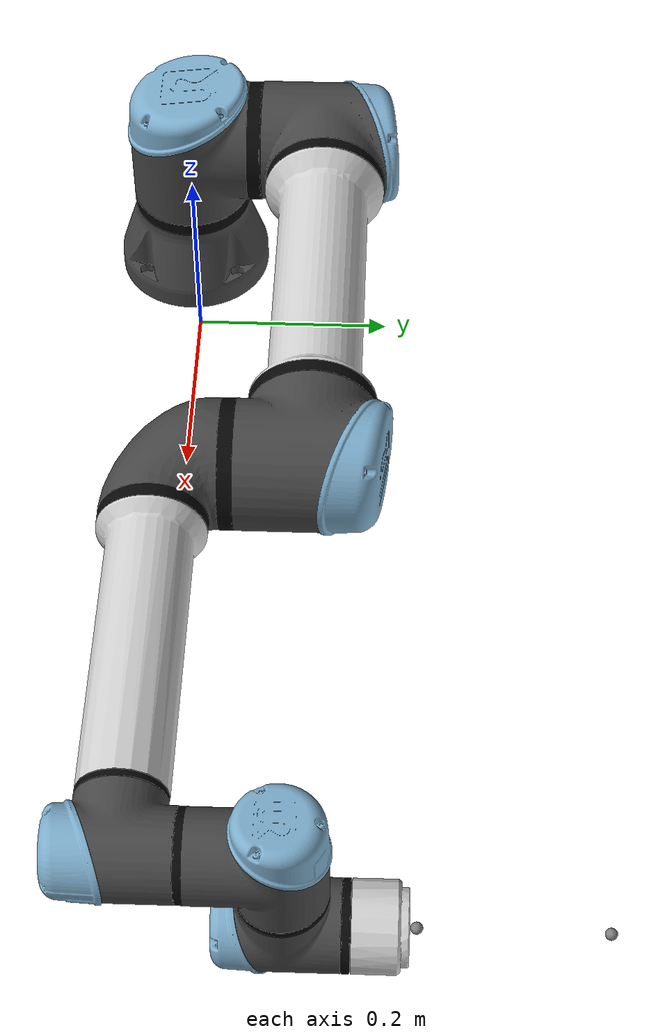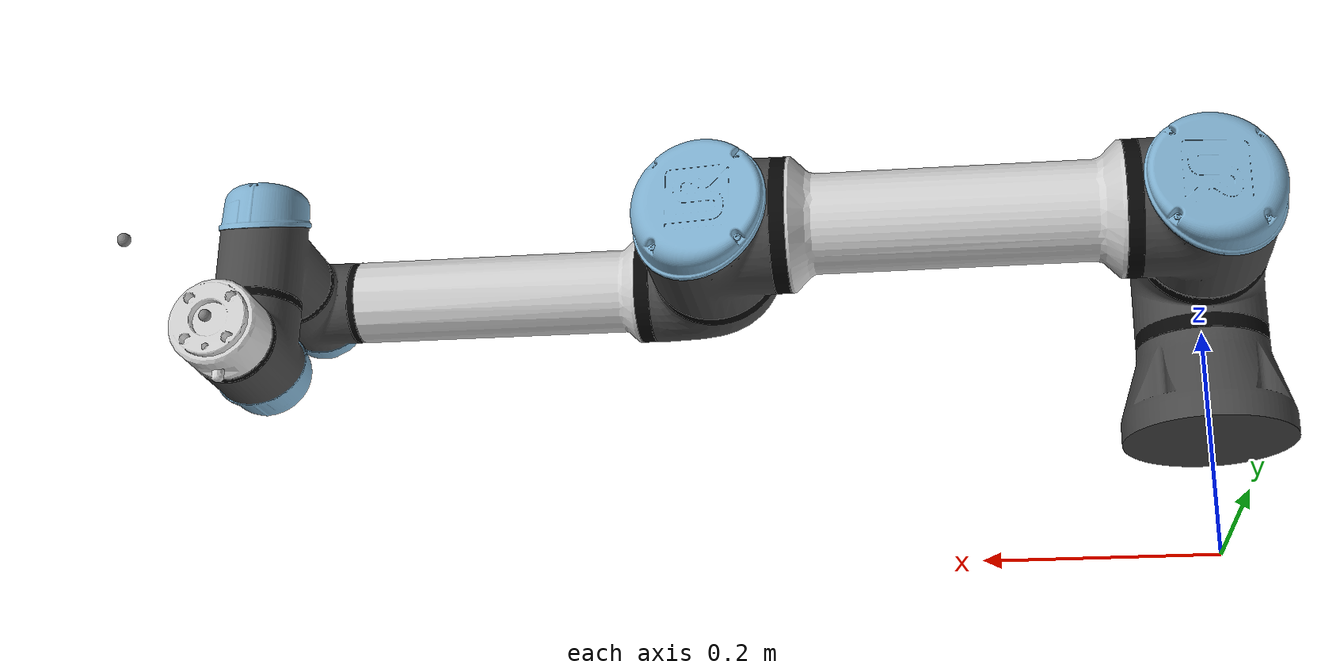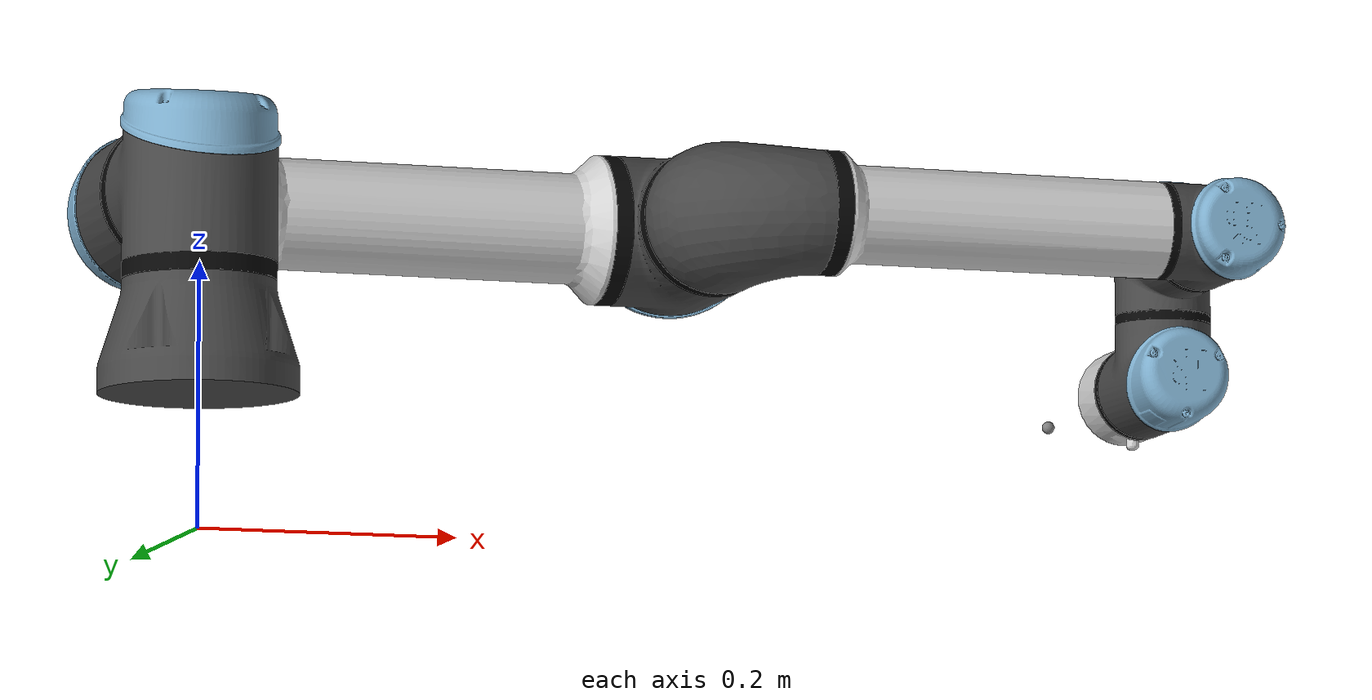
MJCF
<mujoco model="ur5e_arm">
  <compiler angle="radian" meshdir="meshes" autolimits="true" balanceinertia="true"/>
  <option gravity="0 0 -9.81" integrator="implicitfast" impratio="10"/>

  <visual>
    <global offwidth="640" offheight="480"/>
    <quality shadowsize="4096"/>
  </visual>

  <default>
    <default class="robot">
      <default class="visual">
        <geom contype="0" conaffinity="0" group="2"/>
      </default>
      <default class="collision">
        <geom contype="1" conaffinity="1" group="3" condim="4"/>
      </default>
    </default>
  </default>

  <asset>
    <!-- Base -->
    <mesh name="MESH_base_bd1b2dd6" file="base_bd1b2dd6.stl"/>
    <mesh name="MESH_base_b81001a2_0" file="base_b81001a2_0.obj"/>
    <mesh name="MESH_base_b81001a2_1" file="base_b81001a2_1.obj"/>
    <!-- Shoulder -->
    <mesh name="MESH_shoulder_661339ad" file="shoulder_661339ad.stl"/>
    <mesh name="MESH_shoulder_0fe2d913_0" file="shoulder_0fe2d913_0.obj"/>
    <mesh name="MESH_shoulder_0fe2d913_1" file="shoulder_0fe2d913_1.obj"/>
    <mesh name="MESH_shoulder_0fe2d913_2" file="shoulder_0fe2d913_2.obj"/>
    <!-- Upper arm -->
    <mesh name="MESH_upperarm_d0455716" file="upperarm_d0455716.stl"/>
    <mesh name="MESH_upperarm_12b51e98_0" file="upperarm_12b51e98_0.obj"/>
    <mesh name="MESH_upperarm_12b51e98_1" file="upperarm_12b51e98_1.obj"/>
    <mesh name="MESH_upperarm_12b51e98_2" file="upperarm_12b51e98_2.obj"/>
    <mesh name="MESH_upperarm_12b51e98_3" file="upperarm_12b51e98_3.obj"/>
    <mesh name="MESH_upperarm_12b51e98_4" file="upperarm_12b51e98_4.obj"/>
    <mesh name="MESH_upperarm_12b51e98_5" file="upperarm_12b51e98_5.obj"/>
    <mesh name="MESH_upperarm_12b51e98_6" file="upperarm_12b51e98_6.obj"/>
    <mesh name="MESH_upperarm_12b51e98_7" file="upperarm_12b51e98_7.obj"/>
    <!-- Forearm -->
    <mesh name="MESH_forearm_98bdcf8e" file="forearm_98bdcf8e.stl"/>
    <mesh name="MESH_forearm_861ccd15_0" file="forearm_861ccd15_0.obj"/>
    <mesh name="MESH_forearm_861ccd15_1" file="forearm_861ccd15_1.obj"/>
    <mesh name="MESH_forearm_861ccd15_2" file="forearm_861ccd15_2.obj"/>
    <mesh name="MESH_forearm_861ccd15_3" file="forearm_861ccd15_3.obj"/>
    <mesh name="MESH_forearm_861ccd15_4" file="forearm_861ccd15_4.obj"/>
    <mesh name="MESH_forearm_861ccd15_5" file="forearm_861ccd15_5.obj"/>
    <mesh name="MESH_forearm_861ccd15_6" file="forearm_861ccd15_6.obj"/>
    <!-- Wrist 1 -->
    <mesh name="MESH_wrist1_2df87b9f" file="wrist1_2df87b9f.stl"/>
    <mesh name="MESH_wrist1_1e3ee180_0" file="wrist1_1e3ee180_0.obj"/>
    <mesh name="MESH_wrist1_1e3ee180_1" file="wrist1_1e3ee180_1.obj"/>
    <mesh name="MESH_wrist1_1e3ee180_2" file="wrist1_1e3ee180_2.obj"/>
    <!-- Wrist 2 -->
    <mesh name="MESH_wrist2_e6869549" file="wrist2_e6869549.stl"/>
    <mesh name="MESH_wrist2_bde41993_0" file="wrist2_bde41993_0.obj"/>
    <mesh name="MESH_wrist2_bde41993_1" file="wrist2_bde41993_1.obj"/>
    <mesh name="MESH_wrist2_bde41993_2" file="wrist2_bde41993_2.obj"/>
    <!-- Wrist 3 -->
    <mesh name="MESH_wrist3_21abe53b" file="wrist3_21abe53b.stl"/>
    <mesh name="MESH_wrist3_8e7adc5c_0" file="wrist3_8e7adc5c_0.obj"/>
  </asset>

  <worldbody>
    <body name="ur_base_link" pos="0 0 0.1" quat="1 0 0 0">
      <body name="ur_base_link_inertia" pos="0 0 0" quat="6.123233995736766e-17 0 0 1">
        <inertial mass="4.0" diaginertia="0.00443333156 0.00443333156 0.0072" pos="0 0 0" quat="1 0 0 0"/>
        <geom class="collision" name="COLLISION_ur_base_link_inertia_0" type="mesh" mesh="MESH_base_bd1b2dd6" pos="0 0 0" quat="6.123233995736766e-17 0 0 1"/>
        <geom class="visual" name="VISUAL_ur_base_link_inertia_0" type="mesh" mesh="MESH_base_b81001a2_0" rgba="0.278 0.278 0.278 1" pos="0 0 0" quat="6.123233995736766e-17 0 0 1"/>
        <geom class="visual" name="VISUAL_ur_base_link_inertia_1" type="mesh" mesh="MESH_base_b81001a2_1" rgba="0.031 0.031 0.031 1" pos="0 0 0" quat="6.123233995736766e-17 0 0 1"/>

        <body name="ur_shoulder_link" pos="0 0 0.1625" quat="1 0 0 0">
          <inertial mass="3.761" diaginertia="0.006024775831167757 0.0070003048838239885 0.007030789285008251" pos="0.0 -0.00193 -0.02561" quat="0.20206705998679322 0.6747312134749398 0.365097644892179 -0.6087777940473136"/>
          <joint name="ur_shoulder_pan_joint" type="hinge" axis="0 0 1" range="-6.283185307179586 6.283185307179586"/>
          <geom class="collision" name="COLLISION_ur_shoulder_link_0" type="mesh" mesh="MESH_shoulder_661339ad" pos="0 0 0" quat="6.123233995736766e-17 0 0 1"/>
          <geom class="visual" name="VISUAL_ur_shoulder_link_0" type="mesh" mesh="MESH_shoulder_0fe2d913_0" rgba="0.278 0.278 0.278 1" pos="0 0 0" quat="6.123233995736766e-17 0 0 1"/>
          <geom class="visual" name="VISUAL_ur_shoulder_link_1" type="mesh" mesh="MESH_shoulder_0fe2d913_1" rgba="0.031 0.031 0.031 1" pos="0 0 0" quat="6.123233995736766e-17 0 0 1"/>
          <geom class="visual" name="VISUAL_ur_shoulder_link_2" type="mesh" mesh="MESH_shoulder_0fe2d913_2" rgba="0.490 0.678 0.8 1" pos="0 0 0" quat="6.123233995736766e-17 0 0 1"/>

          <body name="ur_upper_arm_link" pos="0 0 0" quat="0.7071067811140325 0.7071067812590626 0 0">
            <inertial mass="8.058" diaginertia="0.015058840753982044 0.3324720677719464 0.3338808714740716" pos="-0.2125 0.0 0.11336" quat="0.7066521546519151 0.7075611104882223 5.365436380901162e-05 -6.611874721869904e-05"/>
            <joint name="ur_shoulder_lift_joint" type="hinge" axis="0 0 1" range="-6.283185307179586 6.283185307179586"/>
            <geom class="collision" name="COLLISION_ur_upper_arm_link_0" type="mesh" mesh="MESH_upperarm_d0455716" pos="0 0 0.138" quat="0.5 0.5 -0.5 -0.5"/>
            <geom class="visual" name="VISUAL_ur_upper_arm_link_0" type="mesh" mesh="MESH_upperarm_12b51e98_0" rgba="0.490 0.678 0.8 1" pos="0 0 0.138" quat="0.5 0.5 -0.5 -0.5"/>
            <geom class="visual" name="VISUAL_ur_upper_arm_link_1" type="mesh" mesh="MESH_upperarm_12b51e98_1" rgba="0.278 0.278 0.278 1" pos="0 0 0.138" quat="0.5 0.5 -0.5 -0.5"/>
            <geom class="visual" name="VISUAL_ur_upper_arm_link_2" type="mesh" mesh="MESH_upperarm_12b51e98_2" rgba="0.031 0.031 0.031 1" pos="0 0 0.138" quat="0.5 0.5 -0.5 -0.5"/>
            <geom class="visual" name="VISUAL_ur_upper_arm_link_3" type="mesh" mesh="MESH_upperarm_12b51e98_3" rgba="0.490 0.678 0.8 1" pos="0 0 0.138" quat="0.5 0.5 -0.5 -0.5"/>
            <geom class="visual" name="VISUAL_ur_upper_arm_link_4" type="mesh" mesh="MESH_upperarm_12b51e98_4" rgba="0.820 0.820 0.820 1" pos="0 0 0.138" quat="0.5 0.5 -0.5 -0.5"/>
            <geom class="visual" name="VISUAL_ur_upper_arm_link_5" type="mesh" mesh="MESH_upperarm_12b51e98_5" rgba="0.031 0.031 0.031 1" pos="0 0 0.138" quat="0.5 0.5 -0.5 -0.5"/>
            <geom class="visual" name="VISUAL_ur_upper_arm_link_6" type="mesh" mesh="MESH_upperarm_12b51e98_6" rgba="0.278 0.278 0.278 1" pos="0 0 0.138" quat="0.5 0.5 -0.5 -0.5"/>
            <geom class="visual" name="VISUAL_ur_upper_arm_link_7" type="mesh" mesh="MESH_upperarm_12b51e98_7" rgba="0.031 0.031 0.031 1" pos="0 0 0.138" quat="0.5 0.5 -0.5 -0.5"/>

            <body name="ur_forearm_link" pos="-0.425 0 0" quat="1 0 0 0">
              <inertial mass="2.846" diaginertia="0.003971028904819707 0.0785102224320644 0.07879270866311583" pos="-0.2422 0.0 0.0265" quat="0.6984488939206283 0.715600664432383 -0.006368275363090868 -0.006654074983260038"/>
              <joint name="ur_elbow_joint" type="hinge" axis="0 0 1" range="-3.141592653589793 3.141592653589793"/>
              <geom class="collision" name="COLLISION_ur_forearm_link_0" type="mesh" mesh="MESH_forearm_98bdcf8e" pos="0 0 0.007" quat="0.5 0.5 -0.5 -0.5"/>
              <geom class="visual" name="VISUAL_ur_forearm_link_0" type="mesh" mesh="MESH_forearm_861ccd15_0" rgba="0.278 0.278 0.278 1" pos="0 0 0.007" quat="0.5 0.5 -0.5 -0.5"/>
              <geom class="visual" name="VISUAL_ur_forearm_link_1" type="mesh" mesh="MESH_forearm_861ccd15_1" rgba="0.278 0.278 0.278 1" pos="0 0 0.007" quat="0.5 0.5 -0.5 -0.5"/>
              <geom class="visual" name="VISUAL_ur_forearm_link_2" type="mesh" mesh="MESH_forearm_861ccd15_2" rgba="0.031 0.031 0.031 1" pos="0 0 0.007" quat="0.5 0.5 -0.5 -0.5"/>
              <geom class="visual" name="VISUAL_ur_forearm_link_3" type="mesh" mesh="MESH_forearm_861ccd15_3" rgba="0.820 0.820 0.820 1" pos="0 0 0.007" quat="0.5 0.5 -0.5 -0.5"/>
              <geom class="visual" name="VISUAL_ur_forearm_link_4" type="mesh" mesh="MESH_forearm_861ccd15_4" rgba="0.031 0.031 0.031 1" pos="0 0 0.007" quat="0.5 0.5 -0.5 -0.5"/>
              <geom class="visual" name="VISUAL_ur_forearm_link_5" type="mesh" mesh="MESH_forearm_861ccd15_5" rgba="0.490 0.678 0.8 1" pos="0 0 0.007" quat="0.5 0.5 -0.5 -0.5"/>
              <geom class="visual" name="VISUAL_ur_forearm_link_6" type="mesh" mesh="MESH_forearm_861ccd15_6" rgba="0.031 0.031 0.031 1" pos="0 0 0.007" quat="0.5 0.5 -0.5 -0.5"/>

              <body name="ur_wrist_1_link" pos="-0.3922 0 0.1333" quat="1 0 0 0">
                <inertial mass="1.37" diaginertia="0.0011986756140664695 0.0014236273687040747 0.0016550170172294559" pos="0.0 -0.01634 -0.0018" quat="0.617164970477703 0.3485939338997156 0.334307835150133 0.6211504969174605"/>
                <joint name="ur_wrist_1_joint" type="hinge" axis="0 0 1" range="-6.283185307179586 6.283185307179586"/>
                <geom class="collision" name="COLLISION_ur_wrist_1_link_0" type="mesh" mesh="MESH_wrist1_2df87b9f" pos="0 0 -0.127" quat="0.7071067811865476 0.7071067811865475 0 0"/>
                <geom class="visual" name="VISUAL_ur_wrist_1_link_0" type="mesh" mesh="MESH_wrist1_1e3ee180_0" rgba="0.278 0.278 0.278 1" pos="0 0 -0.127" quat="0.7071067811865476 0.7071067811865475 0 0"/>
                <geom class="visual" name="VISUAL_ur_wrist_1_link_1" type="mesh" mesh="MESH_wrist1_1e3ee180_1" rgba="0.490 0.678 0.8 1" pos="0 0 -0.127" quat="0.7071067811865476 0.7071067811865475 0 0"/>
                <geom class="visual" name="VISUAL_ur_wrist_1_link_2" type="mesh" mesh="MESH_wrist1_1e3ee180_2" rgba="0.031 0.031 0.031 1" pos="0 0 -0.127" quat="0.7071067811865476 0.7071067811865475 0 0"/>

                <body name="ur_wrist_2_link" pos="0 -0.0997 0" quat="0.7071067811140325 0.7071067812590626 0 0">
                  <inertial mass="1.3" diaginertia="0.0009581396620642861 0.001286066344108885 0.001356373993826829" pos="0.0 0.01634 -0.0018" quat="0.5288470911292525 -0.47465159334892915 -0.4440672234695894 0.5457388754481953"/>
                  <joint name="ur_wrist_2_joint" type="hinge" axis="0 0 1" range="-6.283185307179586 6.283185307179586"/>
                  <geom class="collision" name="COLLISION_ur_wrist_2_link_0" type="mesh" mesh="MESH_wrist2_e6869549" pos="0 0 -0.0997" quat="1 0 0 0"/>
                  <geom class="visual" name="VISUAL_ur_wrist_2_link_0" type="mesh" mesh="MESH_wrist2_bde41993_0" rgba="0.278 0.278 0.278 1" pos="0 0 -0.0997" quat="1 0 0 0"/>
                  <geom class="visual" name="VISUAL_ur_wrist_2_link_1" type="mesh" mesh="MESH_wrist2_bde41993_1" rgba="0.490 0.678 0.8 1" pos="0 0 -0.0997" quat="1 0 0 0"/>
                  <geom class="visual" name="VISUAL_ur_wrist_2_link_2" type="mesh" mesh="MESH_wrist2_bde41993_2" rgba="0.031 0.031 0.031 1" pos="0 0 -0.0997" quat="1 0 0 0"/>

                  <body name="ur_wrist_3_link" pos="0 0.0996 0" quat="0.7071067811140325 -0.7071067812590626 0 0">
                    <inertial mass="0.365" diaginertia="0.00018693802309626027 0.00018906920634770998 0.0002575727705560295" pos="0.0 0.0 -0.001159" quat="0.9998848543715624 -0.006732397405301183 0.0011178804501228406 0.013553714134353398"/>
                    <joint name="ur_wrist_3_joint" type="hinge" axis="0 0 1" range="-6.283185307179586 6.283185307179586"/>
                    <geom class="collision" name="COLLISION_ur_wrist_3_link_0" type="mesh" mesh="MESH_wrist3_21abe53b" pos="0 0 -0.0989" quat="0.7071067811865476 0.7071067811865475 0 0"/>
                    <geom class="visual" name="VISUAL_ur_wrist_3_link_0" type="mesh" mesh="MESH_wrist3_8e7adc5c_0" rgba="0.820 0.820 0.820 1" pos="0 0 -0.0989" quat="0.7071067811865476 0.7071067811865475 0 0"/>

                    <!-- 法兰盘 -> 夹爪和相机的挂载点 -->
                    <body name="ur_flange" pos="0 0 0" quat="0.5 -0.5 -0.5 -0.5">
                      <body name="ur_tool0" pos="0 0 0" quat="0.5 0.5 0.5 0.5">
                        <!-- 夹爪挂载点 -->
                        <site name="gripper_mount" pos="0 0 0.006" quat="1 0 0 0"/>
                        <!-- TCP site -->
                        <site name="_tcp" pos="0 0 0.16" quat="1 0 0 0"/>
                      </body>
                    </body>
                  </body>
                </body>
              </body>
            </body>
          </body>
        </body>
      </body>
      <body name="ur_base" pos="0 0 0" quat="6.123233995736766e-17 0 0 1"/>
    </body>
  </worldbody>

  <!-- Position actuators for joint incremental control -->
  <actuator>
    <position name="ur_shoulder_pan_joint_ACTUATOR"  joint="ur_shoulder_pan_joint"  kp="2000" dampratio="1.0" ctrlrange="-6.2832 6.2832"/>
    <position name="ur_shoulder_lift_joint_ACTUATOR"  joint="ur_shoulder_lift_joint"  kp="2000" dampratio="1.0" ctrlrange="-6.2832 6.2832"/>
    <position name="ur_elbow_joint_ACTUATOR"           joint="ur_elbow_joint"         kp="2000" dampratio="1.0" ctrlrange="-3.1416 3.1416"/>
    <position name="ur_wrist_1_joint_ACTUATOR"          joint="ur_wrist_1_joint"        kp="500"  dampratio="1.0" ctrlrange="-6.2832 6.2832"/>
    <position name="ur_wrist_2_joint_ACTUATOR"          joint="ur_wrist_2_joint"        kp="500"  dampratio="1.0" ctrlrange="-6.2832 6.2832"/>
    <position name="ur_wrist_3_joint_ACTUATOR"          joint="ur_wrist_3_joint"        kp="500"  dampratio="1.0" ctrlrange="-6.2832 6.2832"/>
  </actuator>

  <sensor>
    <force name="ur_ft_frame_SENSOR_FORCE" site="_tcp"/>
    <torque name="ur_ft_frame_SENSOR_TORQUE" site="_tcp"/>
  </sensor>

  <contact>
    <exclude body1="ur_base_link_inertia" body2="ur_shoulder_link"/>
    <exclude body1="ur_shoulder_link" body2="ur_upper_arm_link"/>
    <exclude body1="ur_upper_arm_link" body2="ur_forearm_link"/>
    <exclude body1="ur_forearm_link" body2="ur_wrist_1_link"/>
    <exclude body1="ur_wrist_1_link" body2="ur_wrist_2_link"/>
    <exclude body1="ur_wrist_2_link" body2="ur_wrist_3_link"/>
  </contact>

  <keyframe>
    <key name="home" qpos="0.0 -1.5708 1.5708 -1.5708 -1.5708 0.0"/>
  </keyframe>
</mujoco>
